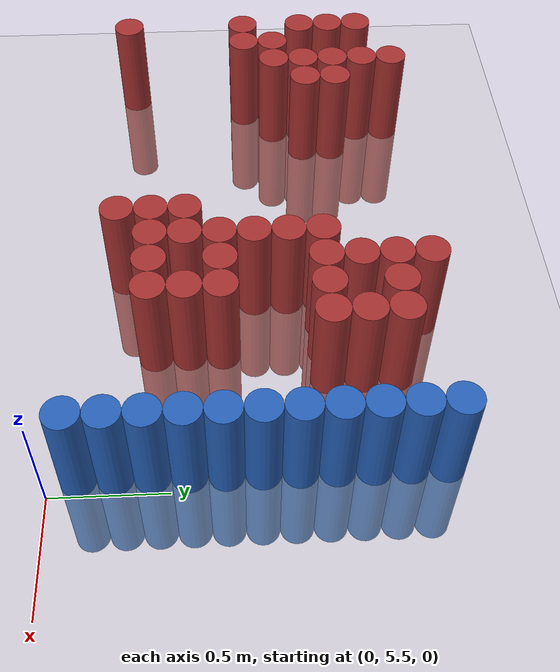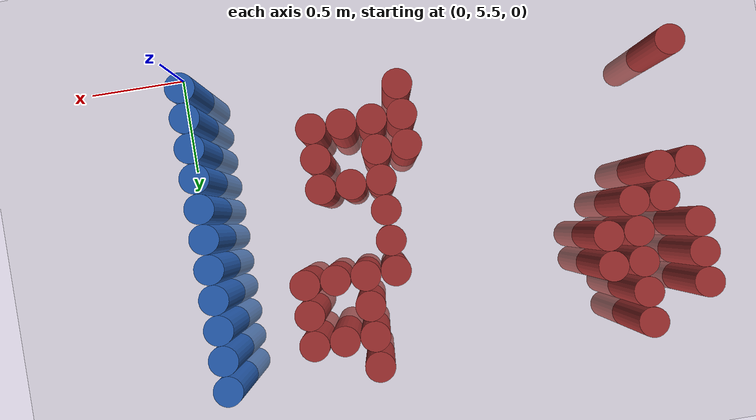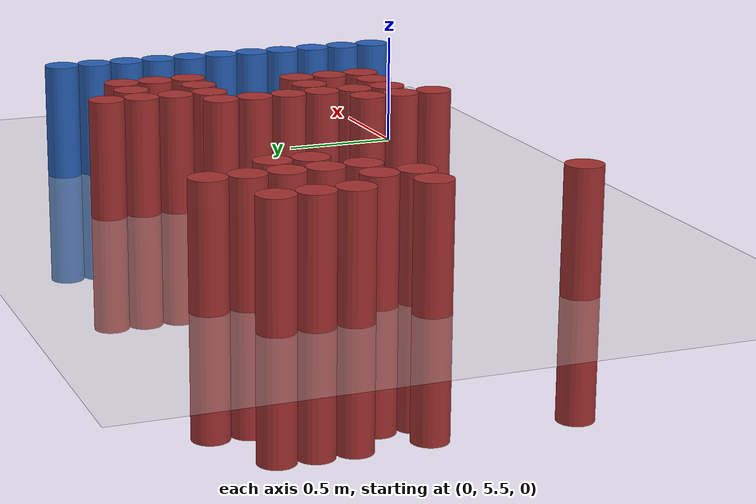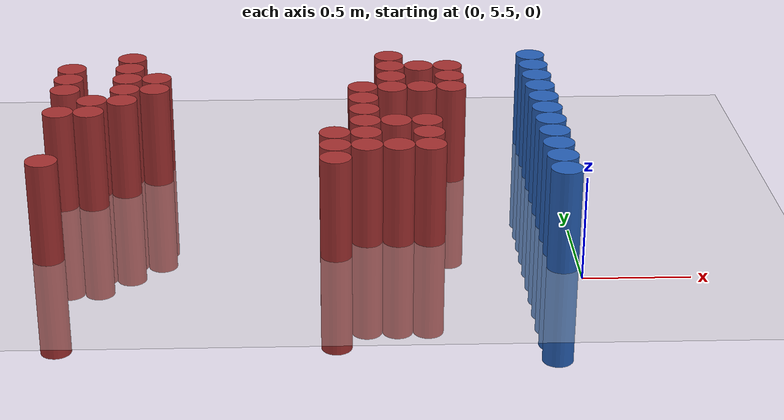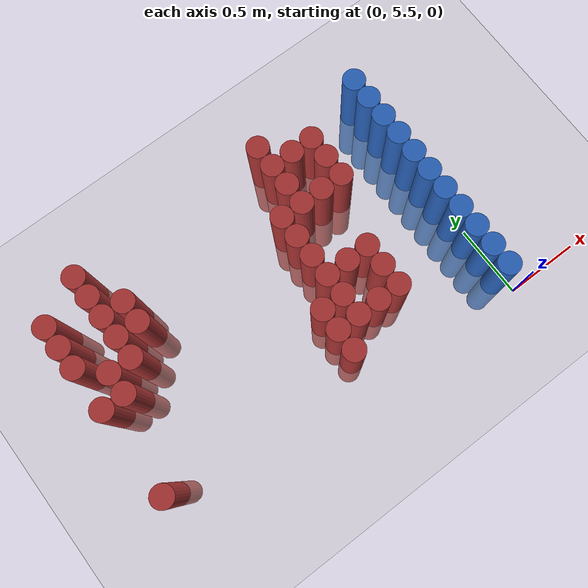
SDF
<sdf version="1.6">
 <world name="default">
  <model name="ground_plane">
   <static>1</static>
   <link name="link">
    <collision name="collision">
     <geometry><plane><normal>0 0 1</normal><size>100 100</size></plane></geometry>
     <surface><friction><ode><mu>100</mu><mu2>50</mu2></ode></friction></surface>
    </collision>
    <visual name="visual">
     <cast_shadows>0</cast_shadows>
     <geometry><plane><normal>0 0 1</normal><size>100 100</size></plane></geometry>
     <material>
      <script><uri>file://media/materials/scripts/gazebo.material</uri><name>Gazebo/Grey</name></script>
     </material>
    </visual>
   </link>
  </model>
  <model name="unit_cylinder_223">
   <static>1</static>
   <pose>-2.475000 5.775000 0.000000 0.000000 0.000000 0.000000</pose>
   <link name="link">
    <inertial>
     <mass>1</mass>
     <inertia><ixx>0.145833</ixx><ixy>0</ixy><ixz>0</ixz><iyy>0.145833</iyy><iyz>0</iyz><izz>0.125</izz></inertia>
    </inertial>
    <collision name="collision">
     <geometry><cylinder><radius>0.075000</radius><length>1</length></cylinder></geometry>
    </collision>
    <visual name="visual">
     <geometry><cylinder><radius>0.075000</radius><length>1</length></cylinder></geometry>
     <material>
      <ambient>0.648000 0.192000 0.192000 1</ambient>
      <diffuse>0.648000 0.192000 0.192000 1</diffuse>
     </material>
     <material>
      <script><name>Gazebo/Grey</name><uri>file://media/materials/scripts/gazebo.material</uri></script>
     </material>
    </visual>
   </link>
  </model>
  <model name="unit_cylinder_224">
   <static>1</static>
   <pose>-2.475000 6.375000 0.000000 0.000000 0.000000 0.000000</pose>
   <link name="link">
    <inertial>
     <mass>1</mass>
     <inertia><ixx>0.145833</ixx><ixy>0</ixy><ixz>0</ixz><iyy>0.145833</iyy><iyz>0</iyz><izz>0.125</izz></inertia>
    </inertial>
    <collision name="collision">
     <geometry><cylinder><radius>0.075000</radius><length>1</length></cylinder></geometry>
    </collision>
    <visual name="visual">
     <geometry><cylinder><radius>0.075000</radius><length>1</length></cylinder></geometry>
     <material>
      <ambient>0.648000 0.192000 0.192000 1</ambient>
      <diffuse>0.648000 0.192000 0.192000 1</diffuse>
     </material>
     <material>
      <script><name>Gazebo/Grey</name><uri>file://media/materials/scripts/gazebo.material</uri></script>
     </material>
    </visual>
   </link>
  </model>
  <model name="unit_cylinder_225">
   <static>1</static>
   <pose>-2.475000 6.675000 0.000000 0.000000 0.000000 0.000000</pose>
   <link name="link">
    <inertial>
     <mass>1</mass>
     <inertia><ixx>0.145833</ixx><ixy>0</ixy><ixz>0</ixz><iyy>0.145833</iyy><iyz>0</iyz><izz>0.125</izz></inertia>
    </inertial>
    <collision name="collision">
     <geometry><cylinder><radius>0.075000</radius><length>1</length></cylinder></geometry>
    </collision>
    <visual name="visual">
     <geometry><cylinder><radius>0.075000</radius><length>1</length></cylinder></geometry>
     <material>
      <ambient>0.648000 0.192000 0.192000 1</ambient>
      <diffuse>0.648000 0.192000 0.192000 1</diffuse>
     </material>
     <material>
      <script><name>Gazebo/Grey</name><uri>file://media/materials/scripts/gazebo.material</uri></script>
     </material>
    </visual>
   </link>
  </model>
  <model name="unit_cylinder_226">
   <static>1</static>
   <pose>-2.475000 6.825000 0.000000 0.000000 0.000000 0.000000</pose>
   <link name="link">
    <inertial>
     <mass>1</mass>
     <inertia><ixx>0.145833</ixx><ixy>0</ixy><ixz>0</ixz><iyy>0.145833</iyy><iyz>0</iyz><izz>0.125</izz></inertia>
    </inertial>
    <collision name="collision">
     <geometry><cylinder><radius>0.075000</radius><length>1</length></cylinder></geometry>
    </collision>
    <visual name="visual">
     <geometry><cylinder><radius>0.075000</radius><length>1</length></cylinder></geometry>
     <material>
      <ambient>0.648000 0.192000 0.192000 1</ambient>
      <diffuse>0.648000 0.192000 0.192000 1</diffuse>
     </material>
     <material>
      <script><name>Gazebo/Grey</name><uri>file://media/materials/scripts/gazebo.material</uri></script>
     </material>
    </visual>
   </link>
  </model>
  <model name="unit_cylinder_227">
   <static>1</static>
   <pose>-2.475000 6.975000 0.000000 0.000000 0.000000 0.000000</pose>
   <link name="link">
    <inertial>
     <mass>1</mass>
     <inertia><ixx>0.145833</ixx><ixy>0</ixy><ixz>0</ixz><iyy>0.145833</iyy><iyz>0</iyz><izz>0.125</izz></inertia>
    </inertial>
    <collision name="collision">
     <geometry><cylinder><radius>0.075000</radius><length>1</length></cylinder></geometry>
    </collision>
    <visual name="visual">
     <geometry><cylinder><radius>0.075000</radius><length>1</length></cylinder></geometry>
     <material>
      <ambient>0.648000 0.192000 0.192000 1</ambient>
      <diffuse>0.648000 0.192000 0.192000 1</diffuse>
     </material>
     <material>
      <script><name>Gazebo/Grey</name><uri>file://media/materials/scripts/gazebo.material</uri></script>
     </material>
    </visual>
   </link>
  </model>
  <model name="unit_cylinder_232">
   <static>1</static>
   <pose>-2.325000 6.375000 0.000000 0.000000 0.000000 0.000000</pose>
   <link name="link">
    <inertial>
     <mass>1</mass>
     <inertia><ixx>0.145833</ixx><ixy>0</ixy><ixz>0</ixz><iyy>0.145833</iyy><iyz>0</iyz><izz>0.125</izz></inertia>
    </inertial>
    <collision name="collision">
     <geometry><cylinder><radius>0.075000</radius><length>1</length></cylinder></geometry>
    </collision>
    <visual name="visual">
     <geometry><cylinder><radius>0.075000</radius><length>1</length></cylinder></geometry>
     <material>
      <ambient>0.648000 0.192000 0.192000 1</ambient>
      <diffuse>0.648000 0.192000 0.192000 1</diffuse>
     </material>
     <material>
      <script><name>Gazebo/Grey</name><uri>file://media/materials/scripts/gazebo.material</uri></script>
     </material>
    </visual>
   </link>
  </model>
  <model name="unit_cylinder_233">
   <static>1</static>
   <pose>-2.325000 6.525000 0.000000 0.000000 0.000000 0.000000</pose>
   <link name="link">
    <inertial>
     <mass>1</mass>
     <inertia><ixx>0.145833</ixx><ixy>0</ixy><ixz>0</ixz><iyy>0.145833</iyy><iyz>0</iyz><izz>0.125</izz></inertia>
    </inertial>
    <collision name="collision">
     <geometry><cylinder><radius>0.075000</radius><length>1</length></cylinder></geometry>
    </collision>
    <visual name="visual">
     <geometry><cylinder><radius>0.075000</radius><length>1</length></cylinder></geometry>
     <material>
      <ambient>0.648000 0.192000 0.192000 1</ambient>
      <diffuse>0.648000 0.192000 0.192000 1</diffuse>
     </material>
     <material>
      <script><name>Gazebo/Grey</name><uri>file://media/materials/scripts/gazebo.material</uri></script>
     </material>
    </visual>
   </link>
  </model>
  <model name="unit_cylinder_239">
   <static>1</static>
   <pose>-2.175000 6.525000 0.000000 0.000000 0.000000 0.000000</pose>
   <link name="link">
    <inertial>
     <mass>1</mass>
     <inertia><ixx>0.145833</ixx><ixy>0</ixy><ixz>0</ixz><iyy>0.145833</iyy><iyz>0</iyz><izz>0.125</izz></inertia>
    </inertial>
    <collision name="collision">
     <geometry><cylinder><radius>0.075000</radius><length>1</length></cylinder></geometry>
    </collision>
    <visual name="visual">
     <geometry><cylinder><radius>0.075000</radius><length>1</length></cylinder></geometry>
     <material>
      <ambient>0.648000 0.192000 0.192000 1</ambient>
      <diffuse>0.648000 0.192000 0.192000 1</diffuse>
     </material>
     <material>
      <script><name>Gazebo/Grey</name><uri>file://media/materials/scripts/gazebo.material</uri></script>
     </material>
    </visual>
   </link>
  </model>
  <model name="unit_cylinder_240">
   <static>1</static>
   <pose>-2.175000 6.675000 0.000000 0.000000 0.000000 0.000000</pose>
   <link name="link">
    <inertial>
     <mass>1</mass>
     <inertia><ixx>0.145833</ixx><ixy>0</ixy><ixz>0</ixz><iyy>0.145833</iyy><iyz>0</iyz><izz>0.125</izz></inertia>
    </inertial>
    <collision name="collision">
     <geometry><cylinder><radius>0.075000</radius><length>1</length></cylinder></geometry>
    </collision>
    <visual name="visual">
     <geometry><cylinder><radius>0.075000</radius><length>1</length></cylinder></geometry>
     <material>
      <ambient>0.648000 0.192000 0.192000 1</ambient>
      <diffuse>0.648000 0.192000 0.192000 1</diffuse>
     </material>
     <material>
      <script><name>Gazebo/Grey</name><uri>file://media/materials/scripts/gazebo.material</uri></script>
     </material>
    </visual>
   </link>
  </model>
  <model name="unit_cylinder_241">
   <static>1</static>
   <pose>-2.175000 6.825000 0.000000 0.000000 0.000000 0.000000</pose>
   <link name="link">
    <inertial>
     <mass>1</mass>
     <inertia><ixx>0.145833</ixx><ixy>0</ixy><ixz>0</ixz><iyy>0.145833</iyy><iyz>0</iyz><izz>0.125</izz></inertia>
    </inertial>
    <collision name="collision">
     <geometry><cylinder><radius>0.075000</radius><length>1</length></cylinder></geometry>
    </collision>
    <visual name="visual">
     <geometry><cylinder><radius>0.075000</radius><length>1</length></cylinder></geometry>
     <material>
      <ambient>0.648000 0.192000 0.192000 1</ambient>
      <diffuse>0.648000 0.192000 0.192000 1</diffuse>
     </material>
     <material>
      <script><name>Gazebo/Grey</name><uri>file://media/materials/scripts/gazebo.material</uri></script>
     </material>
    </visual>
   </link>
  </model>
  <model name="unit_cylinder_242">
   <static>1</static>
   <pose>-2.175000 6.975000 0.000000 0.000000 0.000000 0.000000</pose>
   <link name="link">
    <inertial>
     <mass>1</mass>
     <inertia><ixx>0.145833</ixx><ixy>0</ixy><ixz>0</ixz><iyy>0.145833</iyy><iyz>0</iyz><izz>0.125</izz></inertia>
    </inertial>
    <collision name="collision">
     <geometry><cylinder><radius>0.075000</radius><length>1</length></cylinder></geometry>
    </collision>
    <visual name="visual">
     <geometry><cylinder><radius>0.075000</radius><length>1</length></cylinder></geometry>
     <material>
      <ambient>0.648000 0.192000 0.192000 1</ambient>
      <diffuse>0.648000 0.192000 0.192000 1</diffuse>
     </material>
     <material>
      <script><name>Gazebo/Grey</name><uri>file://media/materials/scripts/gazebo.material</uri></script>
     </material>
    </visual>
   </link>
  </model>
  <model name="unit_cylinder_243">
   <static>1</static>
   <pose>-2.175000 7.125000 0.000000 0.000000 0.000000 0.000000</pose>
   <link name="link">
    <inertial>
     <mass>1</mass>
     <inertia><ixx>0.145833</ixx><ixy>0</ixy><ixz>0</ixz><iyy>0.145833</iyy><iyz>0</iyz><izz>0.125</izz></inertia>
    </inertial>
    <collision name="collision">
     <geometry><cylinder><radius>0.075000</radius><length>1</length></cylinder></geometry>
    </collision>
    <visual name="visual">
     <geometry><cylinder><radius>0.075000</radius><length>1</length></cylinder></geometry>
     <material>
      <ambient>0.648000 0.192000 0.192000 1</ambient>
      <diffuse>0.648000 0.192000 0.192000 1</diffuse>
     </material>
     <material>
      <script><name>Gazebo/Grey</name><uri>file://media/materials/scripts/gazebo.material</uri></script>
     </material>
    </visual>
   </link>
  </model>
  <model name="unit_cylinder_248">
   <static>1</static>
   <pose>-2.025000 6.675000 0.000000 0.000000 0.000000 0.000000</pose>
   <link name="link">
    <inertial>
     <mass>1</mass>
     <inertia><ixx>0.145833</ixx><ixy>0</ixy><ixz>0</ixz><iyy>0.145833</iyy><iyz>0</iyz><izz>0.125</izz></inertia>
    </inertial>
    <collision name="collision">
     <geometry><cylinder><radius>0.075000</radius><length>1</length></cylinder></geometry>
    </collision>
    <visual name="visual">
     <geometry><cylinder><radius>0.075000</radius><length>1</length></cylinder></geometry>
     <material>
      <ambient>0.648000 0.192000 0.192000 1</ambient>
      <diffuse>0.648000 0.192000 0.192000 1</diffuse>
     </material>
     <material>
      <script><name>Gazebo/Grey</name><uri>file://media/materials/scripts/gazebo.material</uri></script>
     </material>
    </visual>
   </link>
  </model>
  <model name="unit_cylinder_249">
   <static>1</static>
   <pose>-2.025000 6.825000 0.000000 0.000000 0.000000 0.000000</pose>
   <link name="link">
    <inertial>
     <mass>1</mass>
     <inertia><ixx>0.145833</ixx><ixy>0</ixy><ixz>0</ixz><iyy>0.145833</iyy><iyz>0</iyz><izz>0.125</izz></inertia>
    </inertial>
    <collision name="collision">
     <geometry><cylinder><radius>0.075000</radius><length>1</length></cylinder></geometry>
    </collision>
    <visual name="visual">
     <geometry><cylinder><radius>0.075000</radius><length>1</length></cylinder></geometry>
     <material>
      <ambient>0.648000 0.192000 0.192000 1</ambient>
      <diffuse>0.648000 0.192000 0.192000 1</diffuse>
     </material>
     <material>
      <script><name>Gazebo/Grey</name><uri>file://media/materials/scripts/gazebo.material</uri></script>
     </material>
    </visual>
   </link>
  </model>
  <model name="unit_cylinder_258">
   <static>1</static>
   <pose>-1.125000 5.775000 0.000000 0.000000 0.000000 0.000000</pose>
   <link name="link">
    <inertial>
     <mass>1</mass>
     <inertia><ixx>0.145833</ixx><ixy>0</ixy><ixz>0</ixz><iyy>0.145833</iyy><iyz>0</iyz><izz>0.125</izz></inertia>
    </inertial>
    <collision name="collision">
     <geometry><cylinder><radius>0.075000</radius><length>1</length></cylinder></geometry>
    </collision>
    <visual name="visual">
     <geometry><cylinder><radius>0.075000</radius><length>1</length></cylinder></geometry>
     <material>
      <ambient>0.648000 0.192000 0.192000 1</ambient>
      <diffuse>0.648000 0.192000 0.192000 1</diffuse>
     </material>
     <material>
      <script><name>Gazebo/Grey</name><uri>file://media/materials/scripts/gazebo.material</uri></script>
     </material>
    </visual>
   </link>
  </model>
  <model name="unit_cylinder_259">
   <static>1</static>
   <pose>-1.125000 5.925000 0.000000 0.000000 0.000000 0.000000</pose>
   <link name="link">
    <inertial>
     <mass>1</mass>
     <inertia><ixx>0.145833</ixx><ixy>0</ixy><ixz>0</ixz><iyy>0.145833</iyy><iyz>0</iyz><izz>0.125</izz></inertia>
    </inertial>
    <collision name="collision">
     <geometry><cylinder><radius>0.075000</radius><length>1</length></cylinder></geometry>
    </collision>
    <visual name="visual">
     <geometry><cylinder><radius>0.075000</radius><length>1</length></cylinder></geometry>
     <material>
      <ambient>0.648000 0.192000 0.192000 1</ambient>
      <diffuse>0.648000 0.192000 0.192000 1</diffuse>
     </material>
     <material>
      <script><name>Gazebo/Grey</name><uri>file://media/materials/scripts/gazebo.material</uri></script>
     </material>
    </visual>
   </link>
  </model>
  <model name="unit_cylinder_260">
   <static>1</static>
   <pose>-1.125000 6.075000 0.000000 0.000000 0.000000 0.000000</pose>
   <link name="link">
    <inertial>
     <mass>1</mass>
     <inertia><ixx>0.145833</ixx><ixy>0</ixy><ixz>0</ixz><iyy>0.145833</iyy><iyz>0</iyz><izz>0.125</izz></inertia>
    </inertial>
    <collision name="collision">
     <geometry><cylinder><radius>0.075000</radius><length>1</length></cylinder></geometry>
    </collision>
    <visual name="visual">
     <geometry><cylinder><radius>0.075000</radius><length>1</length></cylinder></geometry>
     <material>
      <ambient>0.648000 0.192000 0.192000 1</ambient>
      <diffuse>0.648000 0.192000 0.192000 1</diffuse>
     </material>
     <material>
      <script><name>Gazebo/Grey</name><uri>file://media/materials/scripts/gazebo.material</uri></script>
     </material>
    </visual>
   </link>
  </model>
  <model name="unit_cylinder_264">
   <static>1</static>
   <pose>-0.975000 5.925000 0.000000 0.000000 0.000000 0.000000</pose>
   <link name="link">
    <inertial>
     <mass>1</mass>
     <inertia><ixx>0.145833</ixx><ixy>0</ixy><ixz>0</ixz><iyy>0.145833</iyy><iyz>0</iyz><izz>0.125</izz></inertia>
    </inertial>
    <collision name="collision">
     <geometry><cylinder><radius>0.075000</radius><length>1</length></cylinder></geometry>
    </collision>
    <visual name="visual">
     <geometry><cylinder><radius>0.075000</radius><length>1</length></cylinder></geometry>
     <material>
      <ambient>0.648000 0.192000 0.192000 1</ambient>
      <diffuse>0.648000 0.192000 0.192000 1</diffuse>
     </material>
     <material>
      <script><name>Gazebo/Grey</name><uri>file://media/materials/scripts/gazebo.material</uri></script>
     </material>
    </visual>
   </link>
  </model>
  <model name="unit_cylinder_265">
   <static>1</static>
   <pose>-0.975000 6.075000 0.000000 0.000000 0.000000 0.000000</pose>
   <link name="link">
    <inertial>
     <mass>1</mass>
     <inertia><ixx>0.145833</ixx><ixy>0</ixy><ixz>0</ixz><iyy>0.145833</iyy><iyz>0</iyz><izz>0.125</izz></inertia>
    </inertial>
    <collision name="collision">
     <geometry><cylinder><radius>0.075000</radius><length>1</length></cylinder></geometry>
    </collision>
    <visual name="visual">
     <geometry><cylinder><radius>0.075000</radius><length>1</length></cylinder></geometry>
     <material>
      <ambient>0.648000 0.192000 0.192000 1</ambient>
      <diffuse>0.648000 0.192000 0.192000 1</diffuse>
     </material>
     <material>
      <script><name>Gazebo/Grey</name><uri>file://media/materials/scripts/gazebo.material</uri></script>
     </material>
    </visual>
   </link>
  </model>
  <model name="unit_cylinder_266">
   <static>1</static>
   <pose>-0.975000 6.225000 0.000000 0.000000 0.000000 0.000000</pose>
   <link name="link">
    <inertial>
     <mass>1</mass>
     <inertia><ixx>0.145833</ixx><ixy>0</ixy><ixz>0</ixz><iyy>0.145833</iyy><iyz>0</iyz><izz>0.125</izz></inertia>
    </inertial>
    <collision name="collision">
     <geometry><cylinder><radius>0.075000</radius><length>1</length></cylinder></geometry>
    </collision>
    <visual name="visual">
     <geometry><cylinder><radius>0.075000</radius><length>1</length></cylinder></geometry>
     <material>
      <ambient>0.648000 0.192000 0.192000 1</ambient>
      <diffuse>0.648000 0.192000 0.192000 1</diffuse>
     </material>
     <material>
      <script><name>Gazebo/Grey</name><uri>file://media/materials/scripts/gazebo.material</uri></script>
     </material>
    </visual>
   </link>
  </model>
  <model name="unit_cylinder_267">
   <static>1</static>
   <pose>-0.975000 6.375000 0.000000 0.000000 0.000000 0.000000</pose>
   <link name="link">
    <inertial>
     <mass>1</mass>
     <inertia><ixx>0.145833</ixx><ixy>0</ixy><ixz>0</ixz><iyy>0.145833</iyy><iyz>0</iyz><izz>0.125</izz></inertia>
    </inertial>
    <collision name="collision">
     <geometry><cylinder><radius>0.075000</radius><length>1</length></cylinder></geometry>
    </collision>
    <visual name="visual">
     <geometry><cylinder><radius>0.075000</radius><length>1</length></cylinder></geometry>
     <material>
      <ambient>0.648000 0.192000 0.192000 1</ambient>
      <diffuse>0.648000 0.192000 0.192000 1</diffuse>
     </material>
     <material>
      <script><name>Gazebo/Grey</name><uri>file://media/materials/scripts/gazebo.material</uri></script>
     </material>
    </visual>
   </link>
  </model>
  <model name="unit_cylinder_268">
   <static>1</static>
   <pose>-0.975000 6.525000 0.000000 0.000000 0.000000 0.000000</pose>
   <link name="link">
    <inertial>
     <mass>1</mass>
     <inertia><ixx>0.145833</ixx><ixy>0</ixy><ixz>0</ixz><iyy>0.145833</iyy><iyz>0</iyz><izz>0.125</izz></inertia>
    </inertial>
    <collision name="collision">
     <geometry><cylinder><radius>0.075000</radius><length>1</length></cylinder></geometry>
    </collision>
    <visual name="visual">
     <geometry><cylinder><radius>0.075000</radius><length>1</length></cylinder></geometry>
     <material>
      <ambient>0.648000 0.192000 0.192000 1</ambient>
      <diffuse>0.648000 0.192000 0.192000 1</diffuse>
     </material>
     <material>
      <script><name>Gazebo/Grey</name><uri>file://media/materials/scripts/gazebo.material</uri></script>
     </material>
    </visual>
   </link>
  </model>
  <model name="unit_cylinder_269">
   <static>1</static>
   <pose>-0.975000 6.675000 0.000000 0.000000 0.000000 0.000000</pose>
   <link name="link">
    <inertial>
     <mass>1</mass>
     <inertia><ixx>0.145833</ixx><ixy>0</ixy><ixz>0</ixz><iyy>0.145833</iyy><iyz>0</iyz><izz>0.125</izz></inertia>
    </inertial>
    <collision name="collision">
     <geometry><cylinder><radius>0.075000</radius><length>1</length></cylinder></geometry>
    </collision>
    <visual name="visual">
     <geometry><cylinder><radius>0.075000</radius><length>1</length></cylinder></geometry>
     <material>
      <ambient>0.648000 0.192000 0.192000 1</ambient>
      <diffuse>0.648000 0.192000 0.192000 1</diffuse>
     </material>
     <material>
      <script><name>Gazebo/Grey</name><uri>file://media/materials/scripts/gazebo.material</uri></script>
     </material>
    </visual>
   </link>
  </model>
  <model name="unit_cylinder_274">
   <static>1</static>
   <pose>-0.825000 5.925000 0.000000 0.000000 0.000000 0.000000</pose>
   <link name="link">
    <inertial>
     <mass>1</mass>
     <inertia><ixx>0.145833</ixx><ixy>0</ixy><ixz>0</ixz><iyy>0.145833</iyy><iyz>0</iyz><izz>0.125</izz></inertia>
    </inertial>
    <collision name="collision">
     <geometry><cylinder><radius>0.075000</radius><length>1</length></cylinder></geometry>
    </collision>
    <visual name="visual">
     <geometry><cylinder><radius>0.075000</radius><length>1</length></cylinder></geometry>
     <material>
      <ambient>0.648000 0.192000 0.192000 1</ambient>
      <diffuse>0.648000 0.192000 0.192000 1</diffuse>
     </material>
     <material>
      <script><name>Gazebo/Grey</name><uri>file://media/materials/scripts/gazebo.material</uri></script>
     </material>
    </visual>
   </link>
  </model>
  <model name="unit_cylinder_275">
   <static>1</static>
   <pose>-0.825000 6.225000 0.000000 0.000000 0.000000 0.000000</pose>
   <link name="link">
    <inertial>
     <mass>1</mass>
     <inertia><ixx>0.145833</ixx><ixy>0</ixy><ixz>0</ixz><iyy>0.145833</iyy><iyz>0</iyz><izz>0.125</izz></inertia>
    </inertial>
    <collision name="collision">
     <geometry><cylinder><radius>0.075000</radius><length>1</length></cylinder></geometry>
    </collision>
    <visual name="visual">
     <geometry><cylinder><radius>0.075000</radius><length>1</length></cylinder></geometry>
     <material>
      <ambient>0.648000 0.192000 0.192000 1</ambient>
      <diffuse>0.648000 0.192000 0.192000 1</diffuse>
     </material>
     <material>
      <script><name>Gazebo/Grey</name><uri>file://media/materials/scripts/gazebo.material</uri></script>
     </material>
    </visual>
   </link>
  </model>
  <model name="unit_cylinder_276">
   <static>1</static>
   <pose>-0.825000 6.675000 0.000000 0.000000 0.000000 0.000000</pose>
   <link name="link">
    <inertial>
     <mass>1</mass>
     <inertia><ixx>0.145833</ixx><ixy>0</ixy><ixz>0</ixz><iyy>0.145833</iyy><iyz>0</iyz><izz>0.125</izz></inertia>
    </inertial>
    <collision name="collision">
     <geometry><cylinder><radius>0.075000</radius><length>1</length></cylinder></geometry>
    </collision>
    <visual name="visual">
     <geometry><cylinder><radius>0.075000</radius><length>1</length></cylinder></geometry>
     <material>
      <ambient>0.648000 0.192000 0.192000 1</ambient>
      <diffuse>0.648000 0.192000 0.192000 1</diffuse>
     </material>
     <material>
      <script><name>Gazebo/Grey</name><uri>file://media/materials/scripts/gazebo.material</uri></script>
     </material>
    </visual>
   </link>
  </model>
  <model name="unit_cylinder_277">
   <static>1</static>
   <pose>-0.825000 6.825000 0.000000 0.000000 0.000000 0.000000</pose>
   <link name="link">
    <inertial>
     <mass>1</mass>
     <inertia><ixx>0.145833</ixx><ixy>0</ixy><ixz>0</ixz><iyy>0.145833</iyy><iyz>0</iyz><izz>0.125</izz></inertia>
    </inertial>
    <collision name="collision">
     <geometry><cylinder><radius>0.075000</radius><length>1</length></cylinder></geometry>
    </collision>
    <visual name="visual">
     <geometry><cylinder><radius>0.075000</radius><length>1</length></cylinder></geometry>
     <material>
      <ambient>0.648000 0.192000 0.192000 1</ambient>
      <diffuse>0.648000 0.192000 0.192000 1</diffuse>
     </material>
     <material>
      <script><name>Gazebo/Grey</name><uri>file://media/materials/scripts/gazebo.material</uri></script>
     </material>
    </visual>
   </link>
  </model>
  <model name="unit_cylinder_278">
   <static>1</static>
   <pose>-0.825000 6.975000 0.000000 0.000000 0.000000 0.000000</pose>
   <link name="link">
    <inertial>
     <mass>1</mass>
     <inertia><ixx>0.145833</ixx><ixy>0</ixy><ixz>0</ixz><iyy>0.145833</iyy><iyz>0</iyz><izz>0.125</izz></inertia>
    </inertial>
    <collision name="collision">
     <geometry><cylinder><radius>0.075000</radius><length>1</length></cylinder></geometry>
    </collision>
    <visual name="visual">
     <geometry><cylinder><radius>0.075000</radius><length>1</length></cylinder></geometry>
     <material>
      <ambient>0.648000 0.192000 0.192000 1</ambient>
      <diffuse>0.648000 0.192000 0.192000 1</diffuse>
     </material>
     <material>
      <script><name>Gazebo/Grey</name><uri>file://media/materials/scripts/gazebo.material</uri></script>
     </material>
    </visual>
   </link>
  </model>
  <model name="unit_cylinder_279">
   <static>1</static>
   <pose>-0.825000 7.125000 0.000000 0.000000 0.000000 0.000000</pose>
   <link name="link">
    <inertial>
     <mass>1</mass>
     <inertia><ixx>0.145833</ixx><ixy>0</ixy><ixz>0</ixz><iyy>0.145833</iyy><iyz>0</iyz><izz>0.125</izz></inertia>
    </inertial>
    <collision name="collision">
     <geometry><cylinder><radius>0.075000</radius><length>1</length></cylinder></geometry>
    </collision>
    <visual name="visual">
     <geometry><cylinder><radius>0.075000</radius><length>1</length></cylinder></geometry>
     <material>
      <ambient>0.648000 0.192000 0.192000 1</ambient>
      <diffuse>0.648000 0.192000 0.192000 1</diffuse>
     </material>
     <material>
      <script><name>Gazebo/Grey</name><uri>file://media/materials/scripts/gazebo.material</uri></script>
     </material>
    </visual>
   </link>
  </model>
  <model name="unit_cylinder_285">
   <static>1</static>
   <pose>-0.675000 5.925000 0.000000 0.000000 0.000000 0.000000</pose>
   <link name="link">
    <inertial>
     <mass>1</mass>
     <inertia><ixx>0.145833</ixx><ixy>0</ixy><ixz>0</ixz><iyy>0.145833</iyy><iyz>0</iyz><izz>0.125</izz></inertia>
    </inertial>
    <collision name="collision">
     <geometry><cylinder><radius>0.075000</radius><length>1</length></cylinder></geometry>
    </collision>
    <visual name="visual">
     <geometry><cylinder><radius>0.075000</radius><length>1</length></cylinder></geometry>
     <material>
      <ambient>0.648000 0.192000 0.192000 1</ambient>
      <diffuse>0.648000 0.192000 0.192000 1</diffuse>
     </material>
     <material>
      <script><name>Gazebo/Grey</name><uri>file://media/materials/scripts/gazebo.material</uri></script>
     </material>
    </visual>
   </link>
  </model>
  <model name="unit_cylinder_286">
   <static>1</static>
   <pose>-0.675000 6.075000 0.000000 0.000000 0.000000 0.000000</pose>
   <link name="link">
    <inertial>
     <mass>1</mass>
     <inertia><ixx>0.145833</ixx><ixy>0</ixy><ixz>0</ixz><iyy>0.145833</iyy><iyz>0</iyz><izz>0.125</izz></inertia>
    </inertial>
    <collision name="collision">
     <geometry><cylinder><radius>0.075000</radius><length>1</length></cylinder></geometry>
    </collision>
    <visual name="visual">
     <geometry><cylinder><radius>0.075000</radius><length>1</length></cylinder></geometry>
     <material>
      <ambient>0.648000 0.192000 0.192000 1</ambient>
      <diffuse>0.648000 0.192000 0.192000 1</diffuse>
     </material>
     <material>
      <script><name>Gazebo/Grey</name><uri>file://media/materials/scripts/gazebo.material</uri></script>
     </material>
    </visual>
   </link>
  </model>
  <model name="unit_cylinder_287">
   <static>1</static>
   <pose>-0.675000 6.225000 0.000000 0.000000 0.000000 0.000000</pose>
   <link name="link">
    <inertial>
     <mass>1</mass>
     <inertia><ixx>0.145833</ixx><ixy>0</ixy><ixz>0</ixz><iyy>0.145833</iyy><iyz>0</iyz><izz>0.125</izz></inertia>
    </inertial>
    <collision name="collision">
     <geometry><cylinder><radius>0.075000</radius><length>1</length></cylinder></geometry>
    </collision>
    <visual name="visual">
     <geometry><cylinder><radius>0.075000</radius><length>1</length></cylinder></geometry>
     <material>
      <ambient>0.648000 0.192000 0.192000 1</ambient>
      <diffuse>0.648000 0.192000 0.192000 1</diffuse>
     </material>
     <material>
      <script><name>Gazebo/Grey</name><uri>file://media/materials/scripts/gazebo.material</uri></script>
     </material>
    </visual>
   </link>
  </model>
  <model name="unit_cylinder_288">
   <static>1</static>
   <pose>-0.675000 6.675000 0.000000 0.000000 0.000000 0.000000</pose>
   <link name="link">
    <inertial>
     <mass>1</mass>
     <inertia><ixx>0.145833</ixx><ixy>0</ixy><ixz>0</ixz><iyy>0.145833</iyy><iyz>0</iyz><izz>0.125</izz></inertia>
    </inertial>
    <collision name="collision">
     <geometry><cylinder><radius>0.075000</radius><length>1</length></cylinder></geometry>
    </collision>
    <visual name="visual">
     <geometry><cylinder><radius>0.075000</radius><length>1</length></cylinder></geometry>
     <material>
      <ambient>0.648000 0.192000 0.192000 1</ambient>
      <diffuse>0.648000 0.192000 0.192000 1</diffuse>
     </material>
     <material>
      <script><name>Gazebo/Grey</name><uri>file://media/materials/scripts/gazebo.material</uri></script>
     </material>
    </visual>
   </link>
  </model>
  <model name="unit_cylinder_289">
   <static>1</static>
   <pose>-0.675000 6.975000 0.000000 0.000000 0.000000 0.000000</pose>
   <link name="link">
    <inertial>
     <mass>1</mass>
     <inertia><ixx>0.145833</ixx><ixy>0</ixy><ixz>0</ixz><iyy>0.145833</iyy><iyz>0</iyz><izz>0.125</izz></inertia>
    </inertial>
    <collision name="collision">
     <geometry><cylinder><radius>0.075000</radius><length>1</length></cylinder></geometry>
    </collision>
    <visual name="visual">
     <geometry><cylinder><radius>0.075000</radius><length>1</length></cylinder></geometry>
     <material>
      <ambient>0.648000 0.192000 0.192000 1</ambient>
      <diffuse>0.648000 0.192000 0.192000 1</diffuse>
     </material>
     <material>
      <script><name>Gazebo/Grey</name><uri>file://media/materials/scripts/gazebo.material</uri></script>
     </material>
    </visual>
   </link>
  </model>
  <model name="unit_cylinder_295">
   <static>1</static>
   <pose>-0.525000 6.675000 0.000000 0.000000 0.000000 0.000000</pose>
   <link name="link">
    <inertial>
     <mass>1</mass>
     <inertia><ixx>0.145833</ixx><ixy>0</ixy><ixz>0</ixz><iyy>0.145833</iyy><iyz>0</iyz><izz>0.125</izz></inertia>
    </inertial>
    <collision name="collision">
     <geometry><cylinder><radius>0.075000</radius><length>1</length></cylinder></geometry>
    </collision>
    <visual name="visual">
     <geometry><cylinder><radius>0.075000</radius><length>1</length></cylinder></geometry>
     <material>
      <ambient>0.648000 0.192000 0.192000 1</ambient>
      <diffuse>0.648000 0.192000 0.192000 1</diffuse>
     </material>
     <material>
      <script><name>Gazebo/Grey</name><uri>file://media/materials/scripts/gazebo.material</uri></script>
     </material>
    </visual>
   </link>
  </model>
  <model name="unit_cylinder_296">
   <static>1</static>
   <pose>-0.525000 6.825000 0.000000 0.000000 0.000000 0.000000</pose>
   <link name="link">
    <inertial>
     <mass>1</mass>
     <inertia><ixx>0.145833</ixx><ixy>0</ixy><ixz>0</ixz><iyy>0.145833</iyy><iyz>0</iyz><izz>0.125</izz></inertia>
    </inertial>
    <collision name="collision">
     <geometry><cylinder><radius>0.075000</radius><length>1</length></cylinder></geometry>
    </collision>
    <visual name="visual">
     <geometry><cylinder><radius>0.075000</radius><length>1</length></cylinder></geometry>
     <material>
      <ambient>0.648000 0.192000 0.192000 1</ambient>
      <diffuse>0.648000 0.192000 0.192000 1</diffuse>
     </material>
     <material>
      <script><name>Gazebo/Grey</name><uri>file://media/materials/scripts/gazebo.material</uri></script>
     </material>
    </visual>
   </link>
  </model>
  <model name="unit_cylinder_297">
   <static>1</static>
   <pose>-0.525000 6.975000 0.000000 0.000000 0.000000 0.000000</pose>
   <link name="link">
    <inertial>
     <mass>1</mass>
     <inertia><ixx>0.145833</ixx><ixy>0</ixy><ixz>0</ixz><iyy>0.145833</iyy><iyz>0</iyz><izz>0.125</izz></inertia>
    </inertial>
    <collision name="collision">
     <geometry><cylinder><radius>0.075000</radius><length>1</length></cylinder></geometry>
    </collision>
    <visual name="visual">
     <geometry><cylinder><radius>0.075000</radius><length>1</length></cylinder></geometry>
     <material>
      <ambient>0.648000 0.192000 0.192000 1</ambient>
      <diffuse>0.648000 0.192000 0.192000 1</diffuse>
     </material>
     <material>
      <script><name>Gazebo/Grey</name><uri>file://media/materials/scripts/gazebo.material</uri></script>
     </material>
    </visual>
   </link>
  </model>
  <model name="unit_cylinder_310">
   <static>1</static>
   <pose>-0.075000 5.625000 0.000000 0.000000 0.000000 0.000000</pose>
   <link name="link">
    <inertial>
     <mass>1</mass>
     <inertia><ixx>0.145833</ixx><ixy>0</ixy><ixz>0</ixz><iyy>0.145833</iyy><iyz>0</iyz><izz>0.125</izz></inertia>
    </inertial>
    <collision name="collision">
     <geometry><cylinder><radius>0.075000</radius><length>1</length></cylinder></geometry>
    </collision>
    <visual name="visual">
     <geometry><cylinder><radius>0.075000</radius><length>1</length></cylinder></geometry>
     <material>
      <ambient>0.152000 0.379000 0.720000 1</ambient>
      <diffuse>0.152000 0.379000 0.720000 1</diffuse>
     </material>
     <material>
      <script><name>Gazebo/Grey</name><uri>file://media/materials/scripts/gazebo.material</uri></script>
     </material>
    </visual>
   </link>
  </model>
  <model name="unit_cylinder_311">
   <static>1</static>
   <pose>-0.075000 5.775000 0.000000 0.000000 0.000000 0.000000</pose>
   <link name="link">
    <inertial>
     <mass>1</mass>
     <inertia><ixx>0.145833</ixx><ixy>0</ixy><ixz>0</ixz><iyy>0.145833</iyy><iyz>0</iyz><izz>0.125</izz></inertia>
    </inertial>
    <collision name="collision">
     <geometry><cylinder><radius>0.075000</radius><length>1</length></cylinder></geometry>
    </collision>
    <visual name="visual">
     <geometry><cylinder><radius>0.075000</radius><length>1</length></cylinder></geometry>
     <material>
      <ambient>0.152000 0.379000 0.720000 1</ambient>
      <diffuse>0.152000 0.379000 0.720000 1</diffuse>
     </material>
     <material>
      <script><name>Gazebo/Grey</name><uri>file://media/materials/scripts/gazebo.material</uri></script>
     </material>
    </visual>
   </link>
  </model>
  <model name="unit_cylinder_312">
   <static>1</static>
   <pose>-0.075000 5.925000 0.000000 0.000000 0.000000 0.000000</pose>
   <link name="link">
    <inertial>
     <mass>1</mass>
     <inertia><ixx>0.145833</ixx><ixy>0</ixy><ixz>0</ixz><iyy>0.145833</iyy><iyz>0</iyz><izz>0.125</izz></inertia>
    </inertial>
    <collision name="collision">
     <geometry><cylinder><radius>0.075000</radius><length>1</length></cylinder></geometry>
    </collision>
    <visual name="visual">
     <geometry><cylinder><radius>0.075000</radius><length>1</length></cylinder></geometry>
     <material>
      <ambient>0.152000 0.379000 0.720000 1</ambient>
      <diffuse>0.152000 0.379000 0.720000 1</diffuse>
     </material>
     <material>
      <script><name>Gazebo/Grey</name><uri>file://media/materials/scripts/gazebo.material</uri></script>
     </material>
    </visual>
   </link>
  </model>
  <model name="unit_cylinder_313">
   <static>1</static>
   <pose>-0.075000 6.075000 0.000000 0.000000 0.000000 0.000000</pose>
   <link name="link">
    <inertial>
     <mass>1</mass>
     <inertia><ixx>0.145833</ixx><ixy>0</ixy><ixz>0</ixz><iyy>0.145833</iyy><iyz>0</iyz><izz>0.125</izz></inertia>
    </inertial>
    <collision name="collision">
     <geometry><cylinder><radius>0.075000</radius><length>1</length></cylinder></geometry>
    </collision>
    <visual name="visual">
     <geometry><cylinder><radius>0.075000</radius><length>1</length></cylinder></geometry>
     <material>
      <ambient>0.152000 0.379000 0.720000 1</ambient>
      <diffuse>0.152000 0.379000 0.720000 1</diffuse>
     </material>
     <material>
      <script><name>Gazebo/Grey</name><uri>file://media/materials/scripts/gazebo.material</uri></script>
     </material>
    </visual>
   </link>
  </model>
  <model name="unit_cylinder_314">
   <static>1</static>
   <pose>-0.075000 6.225000 0.000000 0.000000 0.000000 0.000000</pose>
   <link name="link">
    <inertial>
     <mass>1</mass>
     <inertia><ixx>0.145833</ixx><ixy>0</ixy><ixz>0</ixz><iyy>0.145833</iyy><iyz>0</iyz><izz>0.125</izz></inertia>
    </inertial>
    <collision name="collision">
     <geometry><cylinder><radius>0.075000</radius><length>1</length></cylinder></geometry>
    </collision>
    <visual name="visual">
     <geometry><cylinder><radius>0.075000</radius><length>1</length></cylinder></geometry>
     <material>
      <ambient>0.152000 0.379000 0.720000 1</ambient>
      <diffuse>0.152000 0.379000 0.720000 1</diffuse>
     </material>
     <material>
      <script><name>Gazebo/Grey</name><uri>file://media/materials/scripts/gazebo.material</uri></script>
     </material>
    </visual>
   </link>
  </model>
  <model name="unit_cylinder_315">
   <static>1</static>
   <pose>-0.075000 6.375000 0.000000 0.000000 0.000000 0.000000</pose>
   <link name="link">
    <inertial>
     <mass>1</mass>
     <inertia><ixx>0.145833</ixx><ixy>0</ixy><ixz>0</ixz><iyy>0.145833</iyy><iyz>0</iyz><izz>0.125</izz></inertia>
    </inertial>
    <collision name="collision">
     <geometry><cylinder><radius>0.075000</radius><length>1</length></cylinder></geometry>
    </collision>
    <visual name="visual">
     <geometry><cylinder><radius>0.075000</radius><length>1</length></cylinder></geometry>
     <material>
      <ambient>0.152000 0.379000 0.720000 1</ambient>
      <diffuse>0.152000 0.379000 0.720000 1</diffuse>
     </material>
     <material>
      <script><name>Gazebo/Grey</name><uri>file://media/materials/scripts/gazebo.material</uri></script>
     </material>
    </visual>
   </link>
  </model>
  <model name="unit_cylinder_316">
   <static>1</static>
   <pose>-0.075000 6.525000 0.000000 0.000000 0.000000 0.000000</pose>
   <link name="link">
    <inertial>
     <mass>1</mass>
     <inertia><ixx>0.145833</ixx><ixy>0</ixy><ixz>0</ixz><iyy>0.145833</iyy><iyz>0</iyz><izz>0.125</izz></inertia>
    </inertial>
    <collision name="collision">
     <geometry><cylinder><radius>0.075000</radius><length>1</length></cylinder></geometry>
    </collision>
    <visual name="visual">
     <geometry><cylinder><radius>0.075000</radius><length>1</length></cylinder></geometry>
     <material>
      <ambient>0.152000 0.379000 0.720000 1</ambient>
      <diffuse>0.152000 0.379000 0.720000 1</diffuse>
     </material>
     <material>
      <script><name>Gazebo/Grey</name><uri>file://media/materials/scripts/gazebo.material</uri></script>
     </material>
    </visual>
   </link>
  </model>
  <model name="unit_cylinder_317">
   <static>1</static>
   <pose>-0.075000 6.675000 0.000000 0.000000 0.000000 0.000000</pose>
   <link name="link">
    <inertial>
     <mass>1</mass>
     <inertia><ixx>0.145833</ixx><ixy>0</ixy><ixz>0</ixz><iyy>0.145833</iyy><iyz>0</iyz><izz>0.125</izz></inertia>
    </inertial>
    <collision name="collision">
     <geometry><cylinder><radius>0.075000</radius><length>1</length></cylinder></geometry>
    </collision>
    <visual name="visual">
     <geometry><cylinder><radius>0.075000</radius><length>1</length></cylinder></geometry>
     <material>
      <ambient>0.152000 0.379000 0.720000 1</ambient>
      <diffuse>0.152000 0.379000 0.720000 1</diffuse>
     </material>
     <material>
      <script><name>Gazebo/Grey</name><uri>file://media/materials/scripts/gazebo.material</uri></script>
     </material>
    </visual>
   </link>
  </model>
  <model name="unit_cylinder_318">
   <static>1</static>
   <pose>-0.075000 6.825000 0.000000 0.000000 0.000000 0.000000</pose>
   <link name="link">
    <inertial>
     <mass>1</mass>
     <inertia><ixx>0.145833</ixx><ixy>0</ixy><ixz>0</ixz><iyy>0.145833</iyy><iyz>0</iyz><izz>0.125</izz></inertia>
    </inertial>
    <collision name="collision">
     <geometry><cylinder><radius>0.075000</radius><length>1</length></cylinder></geometry>
    </collision>
    <visual name="visual">
     <geometry><cylinder><radius>0.075000</radius><length>1</length></cylinder></geometry>
     <material>
      <ambient>0.152000 0.379000 0.720000 1</ambient>
      <diffuse>0.152000 0.379000 0.720000 1</diffuse>
     </material>
     <material>
      <script><name>Gazebo/Grey</name><uri>file://media/materials/scripts/gazebo.material</uri></script>
     </material>
    </visual>
   </link>
  </model>
  <model name="unit_cylinder_319">
   <static>1</static>
   <pose>-0.075000 6.975000 0.000000 0.000000 0.000000 0.000000</pose>
   <link name="link">
    <inertial>
     <mass>1</mass>
     <inertia><ixx>0.145833</ixx><ixy>0</ixy><ixz>0</ixz><iyy>0.145833</iyy><iyz>0</iyz><izz>0.125</izz></inertia>
    </inertial>
    <collision name="collision">
     <geometry><cylinder><radius>0.075000</radius><length>1</length></cylinder></geometry>
    </collision>
    <visual name="visual">
     <geometry><cylinder><radius>0.075000</radius><length>1</length></cylinder></geometry>
     <material>
      <ambient>0.152000 0.379000 0.720000 1</ambient>
      <diffuse>0.152000 0.379000 0.720000 1</diffuse>
     </material>
     <material>
      <script><name>Gazebo/Grey</name><uri>file://media/materials/scripts/gazebo.material</uri></script>
     </material>
    </visual>
   </link>
  </model>
  <model name="unit_cylinder_320">
   <static>1</static>
   <pose>-0.075000 7.125000 0.000000 0.000000 0.000000 0.000000</pose>
   <link name="link">
    <inertial>
     <mass>1</mass>
     <inertia><ixx>0.145833</ixx><ixy>0</ixy><ixz>0</ixz><iyy>0.145833</iyy><iyz>0</iyz><izz>0.125</izz></inertia>
    </inertial>
    <collision name="collision">
     <geometry><cylinder><radius>0.075000</radius><length>1</length></cylinder></geometry>
    </collision>
    <visual name="visual">
     <geometry><cylinder><radius>0.075000</radius><length>1</length></cylinder></geometry>
     <material>
      <ambient>0.152000 0.379000 0.720000 1</ambient>
      <diffuse>0.152000 0.379000 0.720000 1</diffuse>
     </material>
     <material>
      <script><name>Gazebo/Grey</name><uri>file://media/materials/scripts/gazebo.material</uri></script>
     </material>
    </visual>
   </link>
  </model>
 </world>
</sdf>
